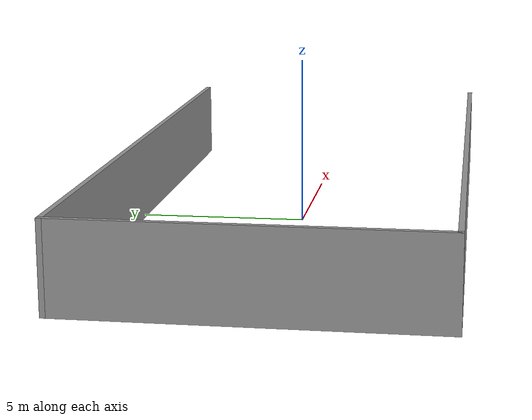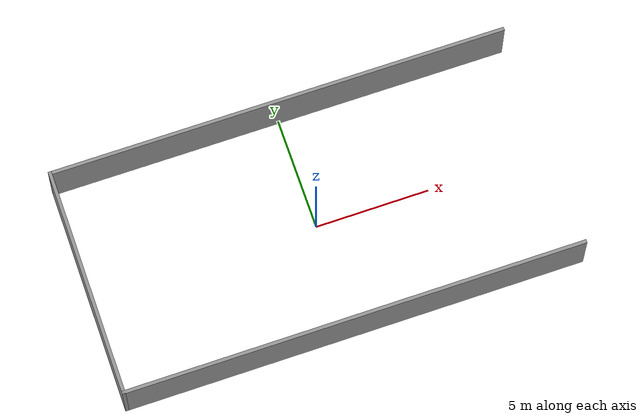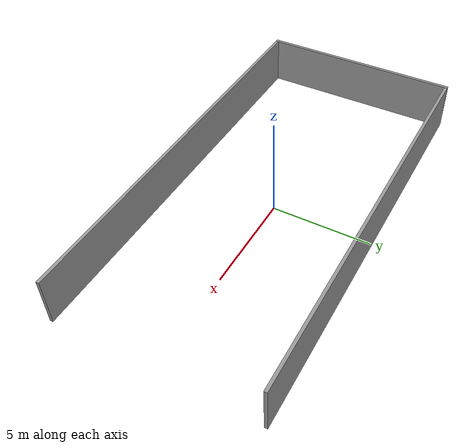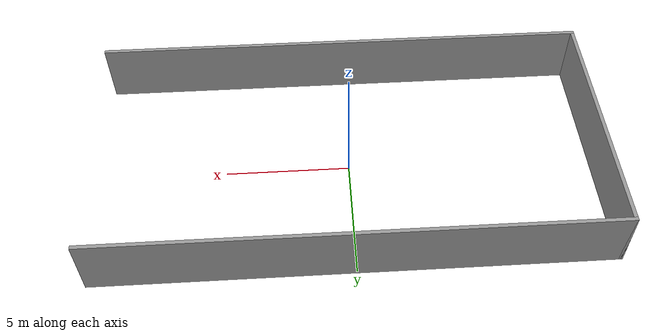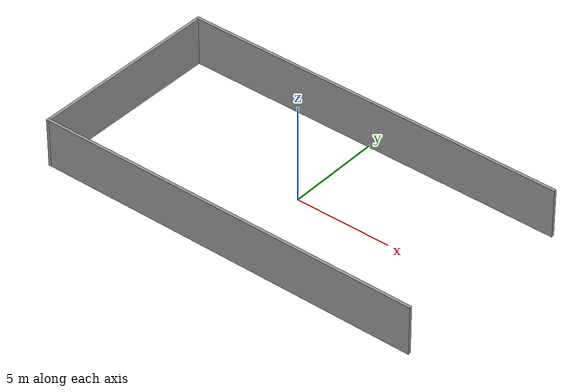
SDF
<?xml version='1.0'?>
<sdf version='1.6'>
  <model name='line_wall'>
    <pose frame=''>-0 0 0 0 -0 0</pose>
    <link name='Wall_0'>
      <collision name='Wall_0_Collision'>
        <geometry>
          <box>
            <size>20.15 0.15 2.5</size>
          </box>
        </geometry>
        <pose frame=''>0 0 1.25 0 -0 0</pose>
      </collision>
      <visual name='Wall_0_Visual'>
        <pose frame=''>0 0 1.25 0 -0 0</pose>
        <geometry>
          <box>
            <size>20.15 0.15 2.5</size>
          </box>
        </geometry>
        <material>
          <script>
            <uri>file://media/materials/scripts/gazebo.material</uri>
            <name>Gazebo/Grey</name>
          </script>
          <ambient>1 1 1 1</ambient>
        </material>
        <meta>
          <layer>0</layer>
        </meta>
      </visual>
      <pose frame=''>0 -5 0 0 -0 3.14159</pose>
    </link>
    <link name='Wall_2'>
      <collision name='Wall_2_Collision'>
        <geometry>
          <box>
            <size>20.15 0.15 2.5</size>
          </box>
        </geometry>
        <pose frame=''>0 0 1.25 0 -0 0</pose>
      </collision>
      <visual name='Wall_2_Visual'>
        <pose frame=''>0 0 1.25 0 -0 0</pose>
        <geometry>
          <box>
            <size>20.15 0.15 2.5</size>
          </box>
        </geometry>
        <material>
          <script>
            <uri>file://media/materials/scripts/gazebo.material</uri>
            <name>Gazebo/Grey</name>
          </script>
          <ambient>1 1 1 1</ambient>
        </material>
        <meta>
          <layer>0</layer>
        </meta>
      </visual>
      <pose frame=''>0 5 0 0 -0 0</pose>
    </link>
    <link name='Wall_7'>
      <collision name='Wall_7_Collision'>
        <geometry>
          <box>
            <size>10.15 0.15 2.5</size>
          </box>
        </geometry>
        <pose frame=''>0 0 1.25 0 -0 0</pose>
      </collision>
      <visual name='Wall_7_Visual'>
        <pose frame=''>0 0 1.25 0 -0 0</pose>
        <geometry>
          <box>
            <size>10.15 0.15 2.5</size>
          </box>
        </geometry>
        <material>
          <script>
            <uri>file://media/materials/scripts/gazebo.material</uri>
            <name>Gazebo/Grey</name>
          </script>
          <ambient>1 1 1 1</ambient>
        </material>
        <meta>
          <layer>0</layer>
        </meta>
      </visual>
      <pose frame=''>-10 0 0 0 -0 -1.5708</pose>
    </link>
    <static>1</static>
  </model>
</sdf>
